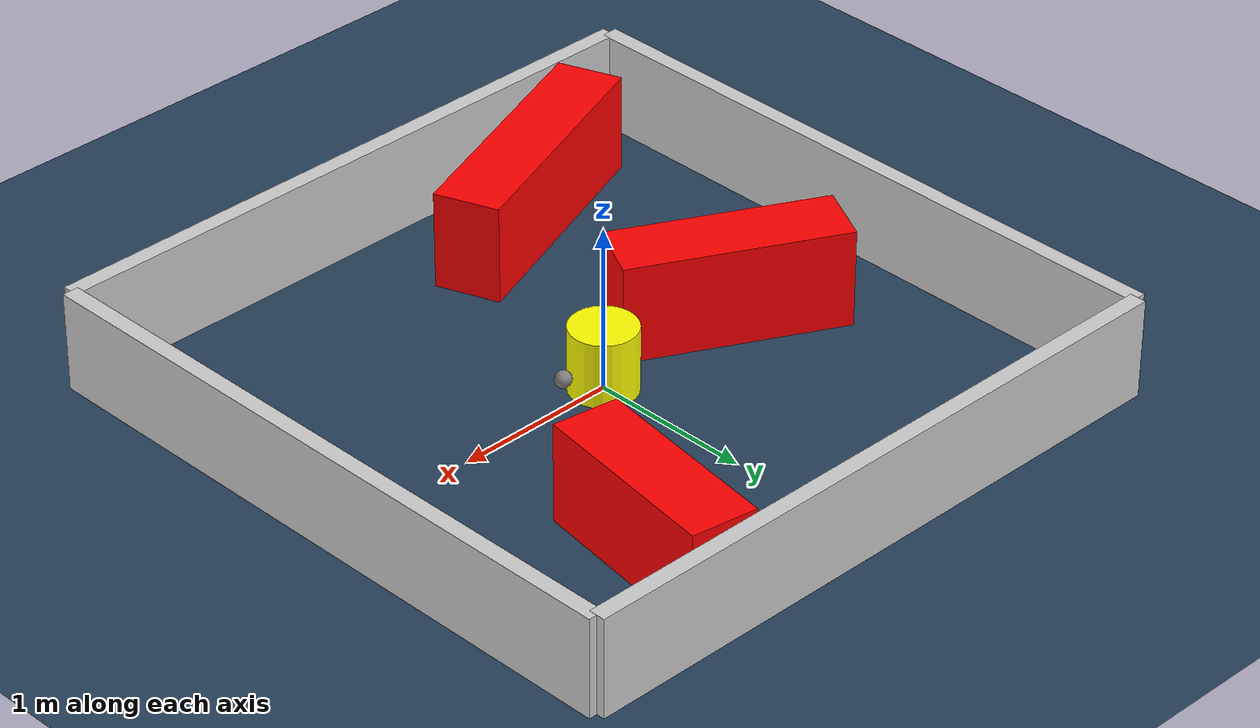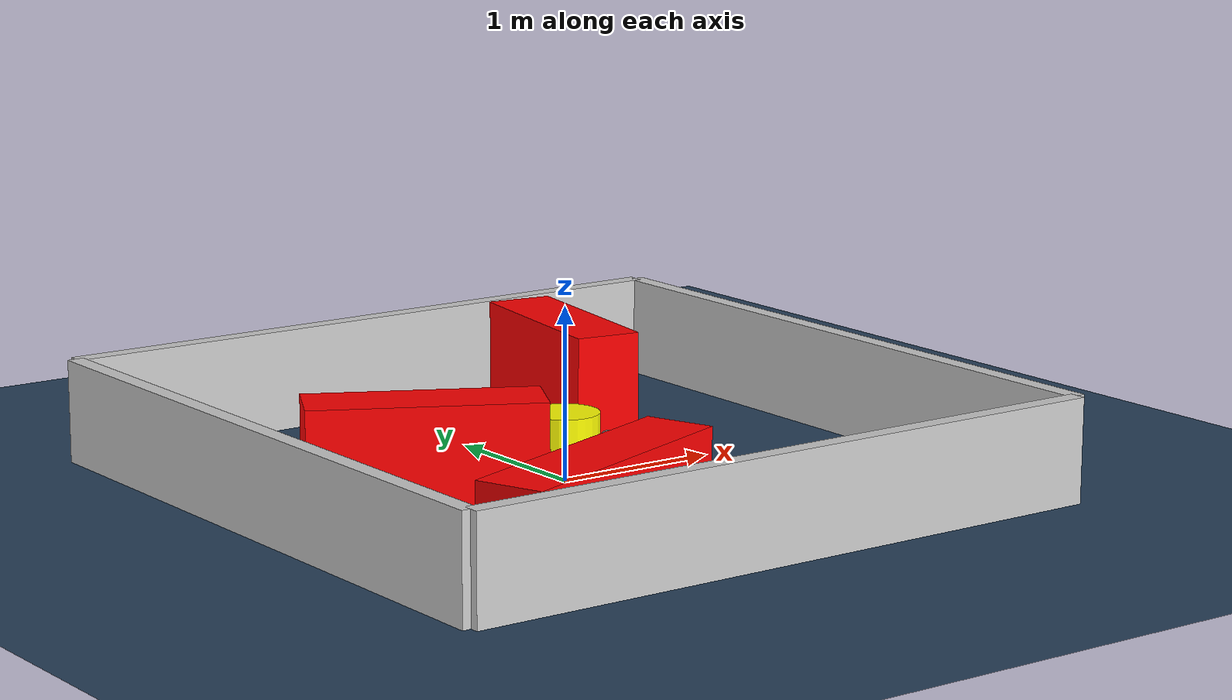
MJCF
<?xml version="1.0" ?>
<mujoco model="generated_environment">
  <option timestep="0.01" integrator="RK4" cone="elliptic"/>
  <default>
    <geom density="1"/>
  </default>
  <asset>
    <texture builtin="gradient" height="3072" rgb1="0.3 0.5 0.7" rgb2="0 0 0" type="skybox" width="512"/>
    <texture builtin="checker" height="300" mark="edge" markrgb="0.8 0.8 0.8" name="groundplane" rgb1="0.2 0.3 0.4" rgb2="0.1 0.2 0.3" type="2d" width="300"/>
    <material name="groundplane" reflectance="0.2" texrepeat="5 5" texture="groundplane" texuniform="true"/>
    <material name="robot" rgba="0.0 1.0 0.0 1"/>
  </asset>
  <worldbody>
    <light dir="0 0 -1" directional="true" pos="0 0 1.5"/>
    <geom condim="4" friction="1.0 0.005 0.001" material="groundplane" name="floor" size="0 0 0.05" type="plane"/>
    <body name="walls">
      <geom name="wall_1" condim="4" pos="-2.0 0.0 0.3" rgba="0.800000011920929 0.800000011920929 0.800000011920929 1.0" size="0.05 2.0 0.3" type="box"/>
      <geom name="wall_2" condim="4" pos="2.0 0.0 0.3" rgba="0.800000011920929 0.800000011920929 0.800000011920929 1.0" size="0.05 2.0 0.3" type="box"/>
      <geom name="wall_3" condim="4" pos="0.0 -2.0 0.3" rgba="0.800000011920929 0.800000011920929 0.800000011920929 1.0" size="2.0 0.05 0.3" type="box"/>
      <geom name="wall_4" condim="4" pos="0.0 2.0 0.3" rgba="0.800000011920929 0.800000011920929 0.800000011920929 1.0" size="2.0 0.05 0.3" type="box"/>
    </body>
    <body name="robot">
      <joint name="joint_x" type="slide" pos="0 0 0" axis="1 0 0"/>
      <joint name="joint_y" type="slide" pos="0 0 0" axis="0 1 0"/>
      <geom name="robot" type="sphere" pos="0.3 0.0 0.2" size="0.05" mass="5." friction="1.0 0.005 0.0001" condim="4" rgba="0.5 0.5 0.5 1.0"/>
      <site name="sensor_ball"/>
    </body>
    <body name="obstacle_movable_1">
      <geom name="obstacle_movable_1" condim="4" pos="0.0 0.0 0.2" euler="0 0 0.0" friction="1.0 0.005 0.001" rgba="1.0 1.0 0.0 1.0" size="0.2 0.2 0.0" type="cylinder" mass="0.1"/>
      <joint type="free"/>
    </body>
    <body name="obstacle_2_static">
      <geom name="obstacle_2_static" condim="4" pos="-0.9201814303491151 0.029979221631360797 0.3" euler="0 0 152.58941965700546" friction="1.0 0.005 0.001" rgba="1 0 0 1" size="0.6631162544370792 0.2 0.3" type="box"/>
    </body>
    <body name="obstacle_3_static">
      <geom name="obstacle_3_static" condim="4" pos="0.9289757301582431 1.3108996189697055 0.3" euler="0 0 81.23043458389809" friction="1.0 0.005 0.001" rgba="1 0 0 1" size="0.5946057063075676 0.2 0.3" type="box"/>
    </body>
    <body name="obstacle_4_static">
      <geom name="obstacle_4_static" condim="4" pos="-0.8612892173678134 -1.4761470569608948 0.3" euler="0 0 200.5989732943493" friction="1.0 0.005 0.001" rgba="1 0 0 1" size="0.798420073535688 0.2 0.3" type="box"/>
    </body>
  </worldbody>
  <actuator>
    <motor name="actuator_x" joint="joint_x" gear="1" ctrlrange="-1 1"/>
    <motor name="actuator_y" joint="joint_y" gear="1" ctrlrange="-1 1"/>
  </actuator>
</mujoco>
